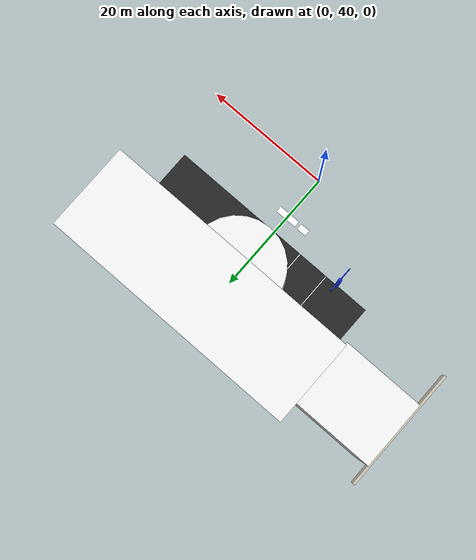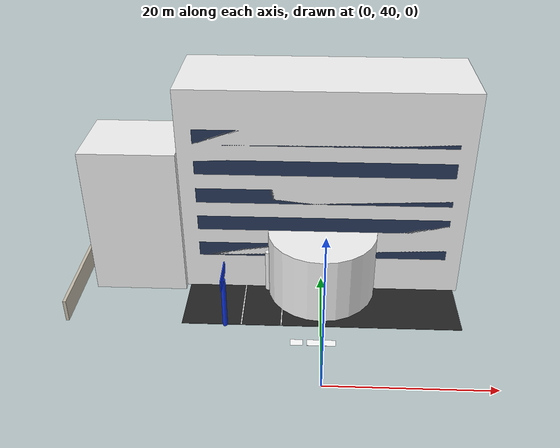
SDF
<sdf version="1.6">
 <world name="srm_campus">
  <model name="zeb_ist_1">
   <static>true</static>
   <pose>-3 47 0.07 0 0 0</pose>
   <link name="l">
    <collision name="c"><geometry><box><size>1.5 1.0 0.01</size></box></geometry></collision>
    <visual name="v">
     <geometry><box><size>1.5 1.0 0.01</size></box></geometry>
     <material><ambient>1 1 1 1</ambient><diffuse>1 1 1 1</diffuse></material>
    </visual>
   </link>
  </model>
  <model name="zeb_ist_2">
   <static>true</static>
   <pose>-1 47 0.07 0 0 0</pose>
   <link name="l">
    <collision name="c"><geometry><box><size>1.5 1.0 0.01</size></box></geometry></collision>
    <visual name="v">
     <geometry><box><size>1.5 1.0 0.01</size></box></geometry>
     <material><ambient>1 1 1 1</ambient><diffuse>1 1 1 1</diffuse></material>
    </visual>
   </link>
  </model>
  <model name="zeb_ist_3">
   <static>true</static>
   <pose>1 47 0.07 0 0 0</pose>
   <link name="l">
    <collision name="c"><geometry><box><size>1.5 1.0 0.01</size></box></geometry></collision>
    <visual name="v">
     <geometry><box><size>1.5 1.0 0.01</size></box></geometry>
     <material><ambient>1 1 1 1</ambient><diffuse>1 1 1 1</diffuse></material>
    </visual>
   </link>
  </model>
  <model name="ist_parking">
   <static>true</static>
   <pose>0 54 0.04 0 0 0</pose>
   <link name="link">
    <collision name="col"><geometry><box><size>35 8 0.06</size></box></geometry></collision>
    <visual name="vis">
     <geometry><box><size>35 8 0.06</size></box></geometry>
     <material><ambient>0.12 0.12 0.12 1</ambient><diffuse>0.14 0.14 0.14 1</diffuse></material>
    </visual>
   </link>
  </model>
  <model name="pll1">
   <static>true</static>
   <pose>-10 54 0.08 0 0 0</pose>
   <link name="l">
    <collision name="c"><geometry><box><size>0.15 8 0.01</size></box></geometry></collision>
    <visual name="v">
     <geometry><box><size>0.15 8 0.01</size></box></geometry>
     <material><ambient>0.9 0.9 0.9 1</ambient><diffuse>0.9 0.9 0.9 1</diffuse></material>
    </visual>
   </link>
  </model>
  <model name="pll2">
   <static>true</static>
   <pose>-5  54 0.08 0 0 0</pose>
   <link name="l">
    <collision name="c"><geometry><box><size>0.15 8 0.01</size></box></geometry></collision>
    <visual name="v">
     <geometry><box><size>0.15 8 0.01</size></box></geometry>
     <material><ambient>0.9 0.9 0.9 1</ambient><diffuse>0.9 0.9 0.9 1</diffuse></material>
    </visual>
   </link>
  </model>
  <model name="pll3">
   <static>true</static>
   <pose>0  54 0.08 0 0 0</pose>
   <link name="l">
    <collision name="c"><geometry><box><size>0.15 8 0.01</size></box></geometry></collision>
    <visual name="v">
     <geometry><box><size>0.15 8 0.01</size></box></geometry>
     <material><ambient>0.9 0.9 0.9 1</ambient><diffuse>0.9 0.9 0.9 1</diffuse></material>
    </visual>
   </link>
  </model>
  <model name="ist_main">
   <static>true</static>
   <pose>0 64 14 0 0 0</pose>
   <link name="link">
    <collision name="col"><geometry><box><size>36 12 28</size></box></geometry></collision>
    <visual name="vis">
     <geometry><box><size>36 12 28</size></box></geometry>
     <material><ambient>0.93 0.93 0.93 1</ambient><diffuse>0.95 0.95 0.95 1</diffuse></material>
    </visual>
   </link>
  </model>
  <model name="ist_win_r1">
   <static>true</static>
   <pose>0 58.1 6  0 0 0</pose>
   <link name="l">
    <collision name="c"><geometry><box><size>32 0.2 2</size></box></geometry></collision>
    <visual name="v">
     <geometry><box><size>32 0.2 2</size></box></geometry>
     <material><ambient>0.15 0.22 0.35 1</ambient><diffuse>0.15 0.22 0.35 1</diffuse></material>
    </visual>
   </link>
  </model>
  <model name="ist_win_r2">
   <static>true</static>
   <pose>0 58.1 10 0 0 0</pose>
   <link name="l">
    <collision name="c"><geometry><box><size>32 0.2 2</size></box></geometry></collision>
    <visual name="v">
     <geometry><box><size>32 0.2 2</size></box></geometry>
     <material><ambient>0.15 0.22 0.35 1</ambient><diffuse>0.15 0.22 0.35 1</diffuse></material>
    </visual>
   </link>
  </model>
  <model name="ist_win_r3">
   <static>true</static>
   <pose>0 58.1 14 0 0 0</pose>
   <link name="l">
    <collision name="c"><geometry><box><size>32 0.2 2</size></box></geometry></collision>
    <visual name="v">
     <geometry><box><size>32 0.2 2</size></box></geometry>
     <material><ambient>0.15 0.22 0.35 1</ambient><diffuse>0.15 0.22 0.35 1</diffuse></material>
    </visual>
   </link>
  </model>
  <model name="ist_win_r4">
   <static>true</static>
   <pose>0 58.1 18 0 0 0</pose>
   <link name="l">
    <collision name="c"><geometry><box><size>32 0.2 2</size></box></geometry></collision>
    <visual name="v">
     <geometry><box><size>32 0.2 2</size></box></geometry>
     <material><ambient>0.15 0.22 0.35 1</ambient><diffuse>0.15 0.22 0.35 1</diffuse></material>
    </visual>
   </link>
  </model>
  <model name="ist_win_r5">
   <static>true</static>
   <pose>0 58.1 22 0 0 0</pose>
   <link name="l">
    <collision name="c"><geometry><box><size>32 0.2 2</size></box></geometry></collision>
    <visual name="v">
     <geometry><box><size>32 0.2 2</size></box></geometry>
     <material><ambient>0.15 0.22 0.35 1</ambient><diffuse>0.15 0.22 0.35 1</diffuse></material>
    </visual>
   </link>
  </model>
  <model name="ist_left_wing">
   <static>true</static>
   <pose>-24 62 10 0 0 0</pose>
   <link name="link">
    <collision name="col"><geometry><box><size>12 10 20</size></box></geometry></collision>
    <visual name="vis">
     <geometry><box><size>12 10 20</size></box></geometry>
     <material><ambient>0.93 0.93 0.93 1</ambient><diffuse>0.95 0.95 0.95 1</diffuse></material>
    </visual>
   </link>
  </model>
  <model name="ist_portico">
   <static>true</static>
   <pose>0 58 4.5 0 0 0</pose>
   <link name="link">
    <collision name="col">
     <geometry><cylinder><radius>7.0</radius><length>9.0</length></cylinder></geometry>
    </collision>
    <visual name="vis">
     <geometry><cylinder><radius>7.0</radius><length>9.0</length></cylinder></geometry>
     <material><ambient>0.93 0.93 0.93 1</ambient><diffuse>0.95 0.95 0.95 1</diffuse></material>
    </visual>
   </link>
  </model>
  <model name="ic1">
   <static>true</static>
   <pose>-5  56 3 0 0 0</pose>
   <link name="l">
    <collision name="c">
     <geometry><cylinder><radius>0.4</radius><length>6</length></cylinder></geometry>
    </collision>
    <visual name="v">
     <geometry><cylinder><radius>0.4</radius><length>6</length></cylinder></geometry>
     <material><ambient>0.93 0.93 0.93 1</ambient><diffuse>0.95 0.95 0.95 1</diffuse></material>
    </visual>
   </link>
  </model>
  <model name="ic3">
   <static>true</static>
   <pose>-7  57.5 3 0 0 0</pose>
   <link name="l">
    <collision name="c">
     <geometry><cylinder><radius>0.4</radius><length>6</length></cylinder></geometry>
    </collision>
    <visual name="v">
     <geometry><cylinder><radius>0.4</radius><length>6</length></cylinder></geometry>
     <material><ambient>0.93 0.93 0.93 1</ambient><diffuse>0.95 0.95 0.95 1</diffuse></material>
    </visual>
   </link>
  </model>
  <model name="ist_steps">
   <static>true</static>
   <pose>0 56 0.5 0 0 0</pose>
   <link name="l">
    <collision name="c"><geometry><box><size>10 2 1</size></box></geometry></collision>
    <visual name="v">
     <geometry><box><size>10 2 1</size></box></geometry>
     <material><ambient>0.75 0.72 0.65 1</ambient><diffuse>0.78 0.75 0.68 1</diffuse></material>
    </visual>
   </link>
  </model>
  <model name="ist_bwall_l">
   <static>true</static>
   <pose>-32 60 1.5 0 0 0</pose>
   <link name="l">
    <collision name="c"><geometry><box><size>0.4 20 3</size></box></geometry></collision>
    <visual name="v">
     <geometry><box><size>0.4 20 3</size></box></geometry>
     <material><ambient>0.75 0.72 0.65 1</ambient><diffuse>0.78 0.75 0.68 1</diffuse></material>
    </visual>
   </link>
  </model>
  <model name="marker_ist">
   <static>true</static>
   <pose>-12 50 3.5 0 0 0</pose>
   <link name="link">
    <collision name="col">
     <geometry><cylinder><radius>0.3</radius><length>7</length></cylinder></geometry>
    </collision>
    <visual name="vis">
     <geometry><cylinder><radius>0.3</radius><length>7</length></cylinder></geometry>
     <material><ambient>0.05 0.20 0.88 1</ambient><diffuse>0.05 0.20 0.88 1</diffuse></material>
    </visual>
   </link>
  </model>
  <model name="ist_sign">
   <static>true</static>
   <pose>-12 50 7.5 0 0 0</pose>
   <link name="l">
    <collision name="c"><geometry><box><size>0.15 4 1.5</size></box></geometry></collision>
    <visual name="v">
     <geometry><box><size>0.15 4 1.5</size></box></geometry>
     <material><ambient>0.05 0.20 0.88 1</ambient><diffuse>0.05 0.20 0.88 1</diffuse></material>
    </visual>
   </link>
  </model>
 </world>
</sdf>
